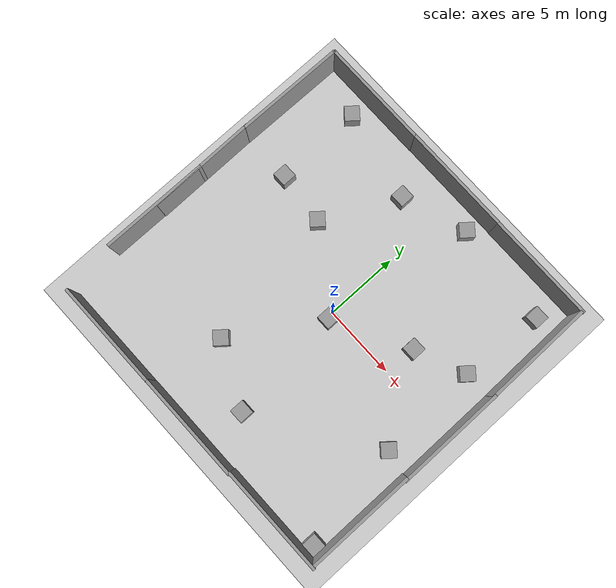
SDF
<sdf version="1.6">
 <world name="default">
  <light name="sun" type="directional">
   <pose>0 0 10 0 -0 0</pose>
   <diffuse>0.8 0.8 0.8 1</diffuse>
   <specular>0.2 0.2 0.2 1</specular>
   <attenuation>
    <range>1000</range>
    <constant>0.9</constant>
    <linear>0.01</linear>
    <quadratic>0.001</quadratic>
   </attenuation>
   <direction>-0.5 0.1 -0.9</direction>
  </light>
  <model name="ground_plane">
   <static>1</static>
   <link name="link">
    <collision name="collision">
     <geometry><plane><normal>0 0 1</normal><size>100 100</size></plane></geometry>
     <surface><friction><ode><mu>100</mu><mu2>50</mu2></ode></friction></surface>
    </collision>
    <visual name="visual">
     <cast_shadows>0</cast_shadows>
     <geometry><plane><normal>0 0 1</normal><size>100 100</size></plane></geometry>
     <material>
      <script><uri>file://media/materials/scripts/gazebo.material</uri><name>Gazebo/Grey</name></script>
     </material>
    </visual>
    <velocity_decay><linear>0</linear><angular>0</angular></velocity_decay>
   </link>
  </model>
  <physics name="default_physics" default="0" type="ode">
   <max_step_size>0.001</max_step_size>
   <real_time_factor>1</real_time_factor>
   <real_time_update_rate>1000</real_time_update_rate>
  </physics>
  <scene><ambient>0.4 0.4 0.4 1</ambient><background>0.7 0.7 0.7 1</background><shadows>1</shadows></scene>
  <model name="grey_wall">
   <static>1</static>
   <link name="link">
    <pose>0 0 1.4 0 -0 0</pose>
    <collision name="collision"><geometry><box><size>7.5 0.2 2.8</size></box></geometry></collision>
    <visual name="visual">
     <cast_shadows>0</cast_shadows>
     <geometry><box><size>7.5 0.2 2.8</size></box></geometry>
     <material>
      <script>
       <uri>model://grey_wall/materials/scripts</uri>
       <uri>model://grey_wall/materials/textures</uri>
       <name>vrc/grey_wall</name>
      </script>
     </material>
    </visual>
    <velocity_decay><linear>0</linear><angular>0</angular></velocity_decay>
   </link>
   <pose>-8.23095 11.0014 0 0 -0 0</pose>
  </model>
  <model name="grey_wall_0">
   <static>1</static>
   <link name="link">
    <pose>0 0 1.4 0 -0 0</pose>
    <collision name="collision"><geometry><box><size>7.5 0.2 2.8</size></box></geometry></collision>
    <visual name="visual">
     <cast_shadows>0</cast_shadows>
     <geometry><box><size>7.5 0.2 2.8</size></box></geometry>
     <material>
      <script>
       <uri>model://grey_wall/materials/scripts</uri>
       <uri>model://grey_wall/materials/textures</uri>
       <name>vrc/grey_wall</name>
      </script>
     </material>
    </visual>
    <velocity_decay><linear>0</linear><angular>0</angular></velocity_decay>
   </link>
   <pose>-0.796756 11.0181 0 0 -0 0</pose>
  </model>
  <model name="grey_wall_1">
   <static>1</static>
   <link name="link">
    <pose>0 0 1.4 0 -0 0</pose>
    <collision name="collision"><geometry><box><size>7.5 0.2 2.8</size></box></geometry></collision>
    <visual name="visual">
     <cast_shadows>0</cast_shadows>
     <geometry><box><size>7.5 0.2 2.8</size></box></geometry>
     <material>
      <script>
       <uri>model://grey_wall/materials/scripts</uri>
       <uri>model://grey_wall/materials/textures</uri>
       <name>vrc/grey_wall</name>
      </script>
     </material>
    </visual>
    <velocity_decay><linear>0</linear><angular>0</angular></velocity_decay>
   </link>
   <pose>6.69405 10.9984 0 0 -0 0</pose>
  </model>
  <model name="grey_wall_2">
   <static>1</static>
   <link name="link">
    <pose>0 0 1.4 0 -0 0</pose>
    <collision name="collision"><geometry><box><size>7.5 0.2 2.8</size></box></geometry></collision>
    <visual name="visual">
     <cast_shadows>0</cast_shadows>
     <geometry><box><size>7.5 0.2 2.8</size></box></geometry>
     <material>
      <script>
       <uri>model://grey_wall/materials/scripts</uri>
       <uri>model://grey_wall/materials/textures</uri>
       <name>vrc/grey_wall</name>
      </script>
     </material>
    </visual>
    <velocity_decay><linear>0</linear><angular>0</angular></velocity_decay>
   </link>
   <pose>-7.95346 -11.1906 0 0 -0 0</pose>
  </model>
  <model name="grey_wall_3">
   <static>1</static>
   <link name="link">
    <pose>0 0 1.4 0 -0 0</pose>
    <collision name="collision"><geometry><box><size>7.5 0.2 2.8</size></box></geometry></collision>
    <visual name="visual">
     <cast_shadows>0</cast_shadows>
     <geometry><box><size>7.5 0.2 2.8</size></box></geometry>
     <material>
      <script>
       <uri>model://grey_wall/materials/scripts</uri>
       <uri>model://grey_wall/materials/textures</uri>
       <name>vrc/grey_wall</name>
      </script>
     </material>
    </visual>
    <velocity_decay><linear>0</linear><angular>0</angular></velocity_decay>
   </link>
   <pose>-0.524266 -11.1812 0 0 -0 0</pose>
  </model>
  <model name="grey_wall_4">
   <static>1</static>
   <link name="link">
    <pose>0 0 1.4 0 -0 0</pose>
    <collision name="collision"><geometry><box><size>7.5 0.2 2.8</size></box></geometry></collision>
    <visual name="visual">
     <cast_shadows>0</cast_shadows>
     <geometry><box><size>7.5 0.2 2.8</size></box></geometry>
     <material>
      <script>
       <uri>model://grey_wall/materials/scripts</uri>
       <uri>model://grey_wall/materials/textures</uri>
       <name>vrc/grey_wall</name>
      </script>
     </material>
    </visual>
    <velocity_decay><linear>0</linear><angular>0</angular></velocity_decay>
   </link>
   <pose>6.84897 -11.1085 0 0 -0 0</pose>
  </model>
  <model name="grey_wall_5">
   <static>1</static>
   <link name="link">
    <pose>0 0 1.4 0 -0 0</pose>
    <collision name="collision"><geometry><box><size>7.5 0.2 2.8</size></box></geometry></collision>
    <visual name="visual">
     <cast_shadows>0</cast_shadows>
     <geometry><box><size>7.5 0.2 2.8</size></box></geometry>
     <material>
      <script>
       <uri>model://grey_wall/materials/scripts</uri>
       <uri>model://grey_wall/materials/textures</uri>
       <name>vrc/grey_wall</name>
      </script>
     </material>
    </visual>
    <velocity_decay><linear>0</linear><angular>0</angular></velocity_decay>
   </link>
   <pose>10.4206 -7.28777 0 0 0 -1.57076</pose>
  </model>
  <model name="grey_wall_6">
   <static>1</static>
   <link name="link">
    <pose>0 0 1.4 0 -0 0</pose>
    <collision name="collision"><geometry><box><size>7.5 0.2 2.8</size></box></geometry></collision>
    <visual name="visual">
     <cast_shadows>0</cast_shadows>
     <geometry><box><size>7.5 0.2 2.8</size></box></geometry>
     <material>
      <script>
       <uri>model://grey_wall/materials/scripts</uri>
       <uri>model://grey_wall/materials/textures</uri>
       <name>vrc/grey_wall</name>
      </script>
     </material>
    </visual>
    <velocity_decay><linear>0</linear><angular>0</angular></velocity_decay>
   </link>
   <pose>10.4561 -0.077268 0 0 -0 1.57597</pose>
  </model>
  <model name="grey_wall_7">
   <static>1</static>
   <link name="link">
    <pose>0 0 1.4 0 -0 0</pose>
    <collision name="collision"><geometry><box><size>7.5 0.2 2.8</size></box></geometry></collision>
    <visual name="visual">
     <cast_shadows>0</cast_shadows>
     <geometry><box><size>7.5 0.2 2.8</size></box></geometry>
     <material>
      <script>
       <uri>model://grey_wall/materials/scripts</uri>
       <uri>model://grey_wall/materials/textures</uri>
       <name>vrc/grey_wall</name>
      </script>
     </material>
    </visual>
    <velocity_decay><linear>0</linear><angular>0</angular></velocity_decay>
   </link>
   <pose>10.3574 7.30013 1e-06 -0.001078 -0.039101 1.59118</pose>
  </model>
  <model name="grey_wall_8">
   <static>1</static>
   <link name="link">
    <pose>0 0 1.4 0 -0 0</pose>
    <collision name="collision"><geometry><box><size>7.5 0.2 2.8</size></box></geometry></collision>
    <visual name="visual">
     <cast_shadows>0</cast_shadows>
     <geometry><box><size>7.5 0.2 2.8</size></box></geometry>
     <material>
      <script>
       <uri>model://grey_wall/materials/scripts</uri>
       <uri>model://grey_wall/materials/textures</uri>
       <name>vrc/grey_wall</name>
      </script>
     </material>
    </visual>
    <velocity_decay><linear>0</linear><angular>0</angular></velocity_decay>
   </link>
   <pose>-11.98 7.28848 0 0 -0 1.56</pose>
  </model>
  <model name="grey_wall_9">
   <static>1</static>
   <link name="link">
    <pose>0 0 1.4 0 -0 0</pose>
    <collision name="collision"><geometry><box><size>7.5 0.2 2.8</size></box></geometry></collision>
    <visual name="visual">
     <cast_shadows>0</cast_shadows>
     <geometry><box><size>7.5 0.2 2.8</size></box></geometry>
     <material>
      <script>
       <uri>model://grey_wall/materials/scripts</uri>
       <uri>model://grey_wall/materials/textures</uri>
       <name>vrc/grey_wall</name>
      </script>
     </material>
    </visual>
    <velocity_decay><linear>0</linear><angular>0</angular></velocity_decay>
   </link>
   <pose>-12.0086 0.01145 0 0 0 -1.56319</pose>
  </model>
  <model name="grey_wall_10">
   <static>1</static>
   <link name="link">
    <pose>0 0 1.4 0 -0 0</pose>
    <collision name="collision"><geometry><box><size>7.5 0.2 2.8</size></box></geometry></collision>
    <visual name="visual">
     <cast_shadows>0</cast_shadows>
     <geometry><box><size>7.5 0.2 2.8</size></box></geometry>
     <material>
      <script>
       <uri>model://grey_wall/materials/scripts</uri>
       <uri>model://grey_wall/materials/textures</uri>
       <name>vrc/grey_wall</name>
      </script>
     </material>
    </visual>
    <velocity_decay><linear>0</linear><angular>0</angular></velocity_decay>
   </link>
   <pose>-12.0217 -3.85294 0 0 -0 1.56631</pose>
  </model>
  <model name="unit_box_1">
   <pose>-4.99023 3.24166 0.5 -1.5708 -0 -0.690444</pose>
   <link name="link">
    <inertial>
     <mass>1</mass>
     <inertia><ixx>1</ixx><ixy>0</ixy><ixz>0</ixz><iyy>1</iyy><iyz>0</iyz><izz>1</izz></inertia>
    </inertial>
    <collision name="collision"><geometry><box><size>1 1 1</size></box></geometry></collision>
    <visual name="visual">
     <geometry><box><size>1 1 1</size></box></geometry>
     <material>
      <script><uri>file://media/materials/scripts/gazebo.material</uri><name>Gazebo/Grey</name></script>
     </material>
    </visual>
    <velocity_decay><linear>0</linear><angular>0</angular></velocity_decay>
   </link>
   <static>0</static>
  </model>
  <model name="unit_box_2">
   <pose>0.147 -0.471211 0.5 0 -0 0</pose>
   <link name="link">
    <inertial>
     <mass>1</mass>
     <inertia><ixx>1</ixx><ixy>0</ixy><ixz>0</ixz><iyy>1</iyy><iyz>0</iyz><izz>1</izz></inertia>
    </inertial>
    <collision name="collision"><geometry><box><size>1 1 1</size></box></geometry></collision>
    <visual name="visual">
     <geometry><box><size>1 1 1</size></box></geometry>
     <material>
      <script><uri>file://media/materials/scripts/gazebo.material</uri><name>Gazebo/Grey</name></script>
     </material>
    </visual>
    <velocity_decay><linear>0</linear><angular>0</angular></velocity_decay>
   </link>
   <static>0</static>
  </model>
  <spherical_coordinates>
   <surface_model>EARTH_WGS84</surface_model>
   <latitude_deg>0</latitude_deg>
   <longitude_deg>0</longitude_deg>
   <elevation>0</elevation>
   <heading_deg>0</heading_deg>
  </spherical_coordinates>
  <gravity>0 0 -9.8</gravity>
  <magnetic_field>6e-06 2.3e-05 -4.2e-05</magnetic_field>
  <atmosphere type="adiabatic"/>
  <model name="unit_box_1_clone">
   <pose>-2.46653 8.25877 0.5 0 -0 0</pose>
   <link name="link">
    <inertial>
     <mass>1</mass>
     <inertia><ixx>1</ixx><ixy>0</ixy><ixz>0</ixz><iyy>1</iyy><iyz>0</iyz><izz>1</izz></inertia>
    </inertial>
    <collision name="collision"><geometry><box><size>1 1 1</size></box></geometry></collision>
    <visual name="visual">
     <geometry><box><size>1 1 1</size></box></geometry>
     <material>
      <script><uri>file://media/materials/scripts/gazebo.material</uri><name>Gazebo/Grey</name></script>
     </material>
    </visual>
    <velocity_decay><linear>0</linear><angular>0</angular></velocity_decay>
   </link>
   <static>0</static>
  </model>
  <model name="unit_box_1_clone_0">
   <pose>5.14502 2.14921 0.5 0 -0 0</pose>
   <link name="link">
    <inertial>
     <mass>1</mass>
     <inertia><ixx>1</ixx><ixy>0</ixy><ixz>0</ixz><iyy>1</iyy><iyz>0</iyz><izz>1</izz></inertia>
    </inertial>
    <collision name="collision"><geometry><box><size>1 1 1</size></box></geometry></collision>
    <visual name="visual">
     <geometry><box><size>1 1 1</size></box></geometry>
     <material>
      <script><uri>file://media/materials/scripts/gazebo.material</uri><name>Gazebo/Grey</name></script>
     </material>
    </visual>
    <velocity_decay><linear>0</linear><angular>0</angular></velocity_decay>
   </link>
   <static>0</static>
  </model>
  <model name="unit_box_1_clone_1">
   <pose>0.828076 -8.33421 0.5 0 -0 0</pose>
   <link name="link">
    <inertial>
     <mass>1</mass>
     <inertia><ixx>1</ixx><ixy>0</ixy><ixz>0</ixz><iyy>1</iyy><iyz>0</iyz><izz>1</izz></inertia>
    </inertial>
    <collision name="collision"><geometry><box><size>1 1 1</size></box></geometry></collision>
    <visual name="visual">
     <geometry><box><size>1 1 1</size></box></geometry>
     <material>
      <script><uri>file://media/materials/scripts/gazebo.material</uri><name>Gazebo/Grey</name></script>
     </material>
    </visual>
    <velocity_decay><linear>0</linear><angular>0</angular></velocity_decay>
   </link>
   <static>0</static>
  </model>
  <model name="unit_box_1_clone_2">
   <pose>-8.54642 3.62648 0.5 0 -0 0</pose>
   <link name="link">
    <inertial>
     <mass>1</mass>
     <inertia><ixx>1</ixx><ixy>0</ixy><ixz>0</ixz><iyy>1</iyy><iyz>0</iyz><izz>1</izz></inertia>
    </inertial>
    <collision name="collision"><geometry><box><size>1 1 1</size></box></geometry></collision>
    <visual name="visual">
     <geometry><box><size>1 1 1</size></box></geometry>
     <material>
      <script><uri>file://media/materials/scripts/gazebo.material</uri><name>Gazebo/Grey</name></script>
     </material>
    </visual>
    <velocity_decay><linear>0</linear><angular>0</angular></velocity_decay>
   </link>
   <static>0</static>
  </model>
  <model name="unit_box_1_clone_3">
   <pose>8.87306 9.17626 0.5 0 -0 0</pose>
   <link name="link">
    <inertial>
     <mass>1</mass>
     <inertia><ixx>1</ixx><ixy>0</ixy><ixz>0</ixz><iyy>1</iyy><iyz>0</iyz><izz>1</izz></inertia>
    </inertial>
    <collision name="collision"><geometry><box><size>1 1 1</size></box></geometry></collision>
    <visual name="visual">
     <geometry><box><size>1 1 1</size></box></geometry>
     <material>
      <script><uri>file://media/materials/scripts/gazebo.material</uri><name>Gazebo/Grey</name></script>
     </material>
    </visual>
    <velocity_decay><linear>0</linear><angular>0</angular></velocity_decay>
   </link>
   <static>0</static>
  </model>
  <model name="unit_box_1_clone_4">
   <pose>9.74 -10.4147 0.5 0 -0 0</pose>
   <link name="link">
    <inertial>
     <mass>1</mass>
     <inertia><ixx>1</ixx><ixy>0</ixy><ixz>0</ixz><iyy>1</iyy><iyz>0</iyz><izz>1</izz></inertia>
    </inertial>
    <collision name="collision"><geometry><box><size>1 1 1</size></box></geometry></collision>
    <visual name="visual">
     <geometry><box><size>1 1 1</size></box></geometry>
     <material>
      <script><uri>file://media/materials/scripts/gazebo.material</uri><name>Gazebo/Grey</name></script>
     </material>
    </visual>
    <velocity_decay><linear>0</linear><angular>0</angular></velocity_decay>
   </link>
   <static>0</static>
  </model>
  <model name="unit_box_1_clone_5">
   <pose>-3.46375 -6.27844 0.5 -1.5708 -0 -0.690444</pose>
   <link name="link">
    <inertial>
     <mass>1</mass>
     <inertia><ixx>1</ixx><ixy>0</ixy><ixz>0</ixz><iyy>1</iyy><iyz>0</iyz><izz>1</izz></inertia>
    </inertial>
    <collision name="collision"><geometry><box><size>1 1 1</size></box></geometry></collision>
    <visual name="visual">
     <geometry><box><size>1 1 1</size></box></geometry>
     <material>
      <script><uri>file://media/materials/scripts/gazebo.material</uri><name>Gazebo/Grey</name></script>
     </material>
    </visual>
    <velocity_decay><linear>0</linear><angular>0</angular></velocity_decay>
   </link>
   <static>0</static>
  </model>
  <model name="unit_box_1_clone_6">
   <pose>8.64855 -3.22757 0.5 -1.5708 -0 -0.690444</pose>
   <link name="link">
    <inertial>
     <mass>1</mass>
     <inertia><ixx>1</ixx><ixy>0</ixy><ixz>0</ixz><iyy>1</iyy><iyz>0</iyz><izz>1</izz></inertia>
    </inertial>
    <collision name="collision"><geometry><box><size>1 1 1</size></box></geometry></collision>
    <visual name="visual">
     <geometry><box><size>1 1 1</size></box></geometry>
     <material>
      <script><uri>file://media/materials/scripts/gazebo.material</uri><name>Gazebo/Grey</name></script>
     </material>
    </visual>
    <velocity_decay><linear>0</linear><angular>0</angular></velocity_decay>
   </link>
   <static>0</static>
  </model>
  <model name="unit_box_1_clone_7">
   <pose>1.90711 9.77035 0.5 -1.5708 -0 -0.690444</pose>
   <link name="link">
    <inertial>
     <mass>1</mass>
     <inertia><ixx>1</ixx><ixy>0</ixy><ixz>0</ixz><iyy>1</iyy><iyz>0</iyz><izz>1</izz></inertia>
    </inertial>
    <collision name="collision"><geometry><box><size>1 1 1</size></box></geometry></collision>
    <visual name="visual">
     <geometry><box><size>1 1 1</size></box></geometry>
     <material>
      <script><uri>file://media/materials/scripts/gazebo.material</uri><name>Gazebo/Grey</name></script>
     </material>
    </visual>
    <velocity_decay><linear>0</linear><angular>0</angular></velocity_decay>
   </link>
   <static>0</static>
  </model>
  <model name="unit_box_1_clone_8">
   <pose>-8.64333 9.57302 0.5 -1.5708 -0 -0.690444</pose>
   <link name="link">
    <inertial>
     <mass>1</mass>
     <inertia><ixx>1</ixx><ixy>0</ixy><ixz>0</ixz><iyy>1</iyy><iyz>0</iyz><izz>1</izz></inertia>
    </inertial>
    <collision name="collision"><geometry><box><size>1 1 1</size></box></geometry></collision>
    <visual name="visual">
     <geometry><box><size>1 1 1</size></box></geometry>
     <material>
      <script><uri>file://media/materials/scripts/gazebo.material</uri><name>Gazebo/Grey</name></script>
     </material>
    </visual>
    <velocity_decay><linear>0</linear><angular>0</angular></velocity_decay>
   </link>
   <static>0</static>
  </model>
  <model name="unit_box_1_clone_9">
   <pose>8.50186 3.5563 0.5 -1.5708 -0 -0.690444</pose>
   <link name="link">
    <inertial>
     <mass>1</mass>
     <inertia><ixx>1</ixx><ixy>0</ixy><ixz>0</ixz><iyy>1</iyy><iyz>0</iyz><izz>1</izz></inertia>
    </inertial>
    <collision name="collision"><geometry><box><size>1 1 1</size></box></geometry></collision>
    <visual name="visual">
     <geometry><box><size>1 1 1</size></box></geometry>
     <material>
      <script><uri>file://media/materials/scripts/gazebo.material</uri><name>Gazebo/Grey</name></script>
     </material>
    </visual>
    <velocity_decay><linear>0</linear><angular>0</angular></velocity_decay>
   </link>
   <static>0</static>
  </model>
 </world>
</sdf>
